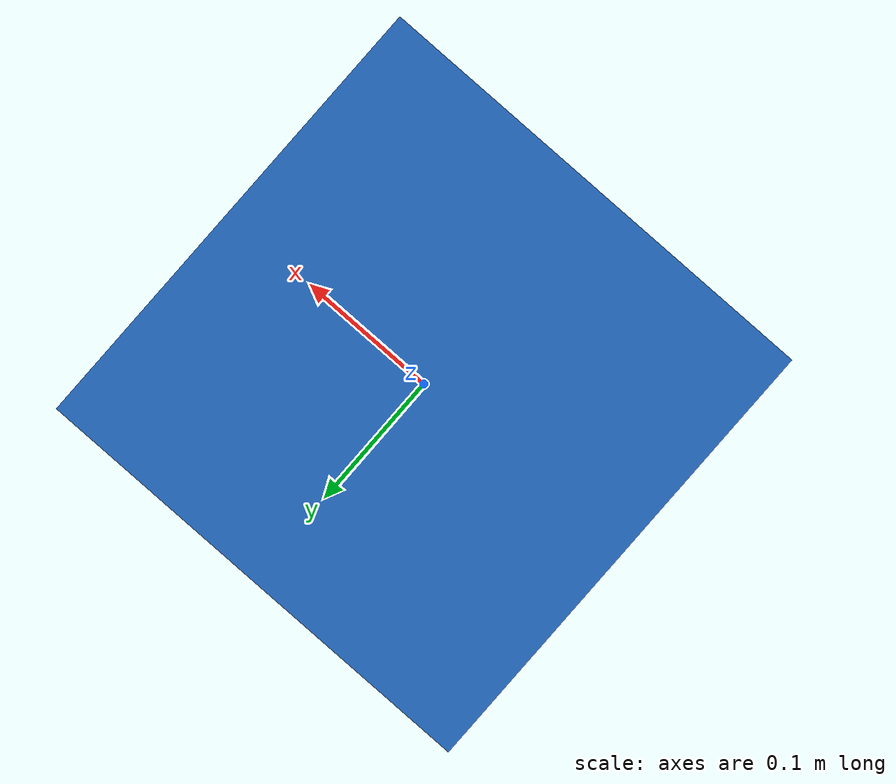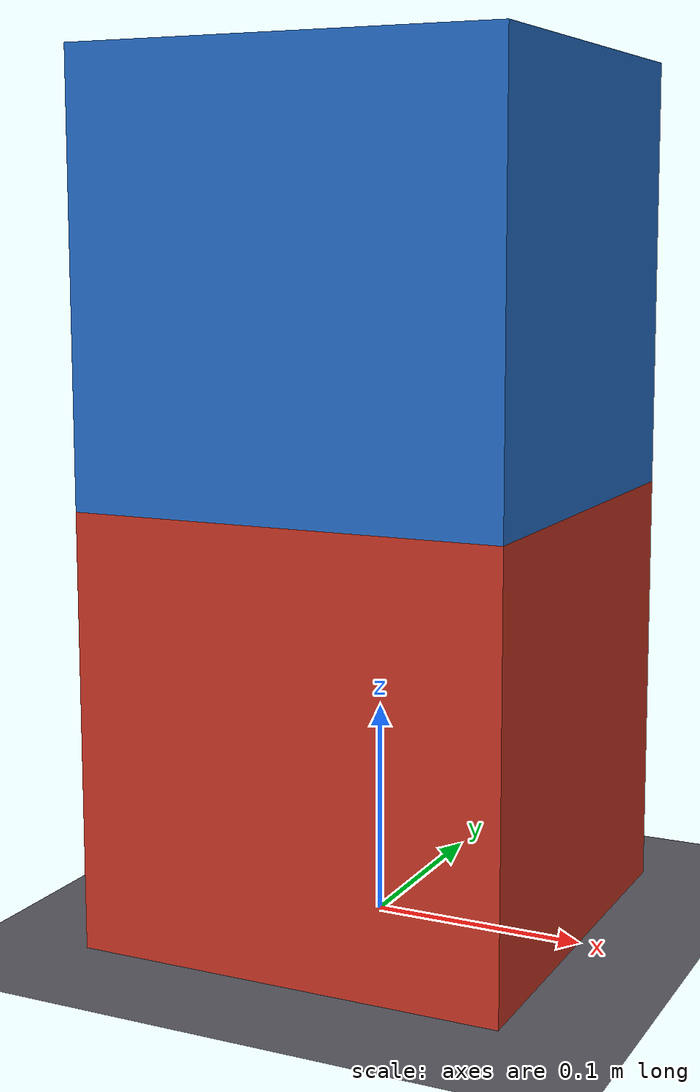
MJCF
<mujoco model="solver-newton">
  <compiler angle="radian"/>
  <option gravity="0 0 -9.81" timestep="0.002" solver="Newton"
          iterations="100" tolerance="1e-10">
    <flag energy="enable"/>
  </option>

  <worldbody>
    <geom name="ground" type="plane" size="2 2 0.01"
          friction="0.5 0.005 0.001" rgba="0.35 0.35 0.38 1"/>

    <body name="box_a" pos="0 0 0.1">
      <joint type="free" name="jnt_a"/>
      <geom name="box_a" type="box" size="0.1 0.1 0.1" mass="1.0"
            friction="0.5 0.005 0.001" rgba="0.82 0.22 0.15 1"/>
    </body>

    <body name="box_b" pos="0 0 0.3">
      <joint type="free" name="jnt_b"/>
      <geom name="box_b" type="box" size="0.1 0.1 0.1" mass="0.5"
            friction="0.5 0.005 0.001" rgba="0.15 0.45 0.82 1"/>
    </body>
  </worldbody>
</mujoco>
